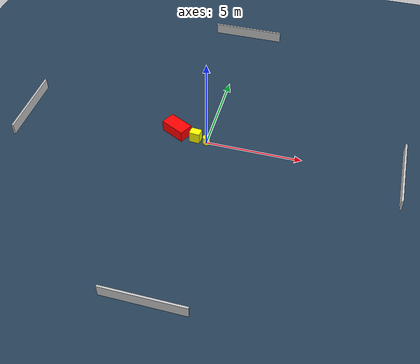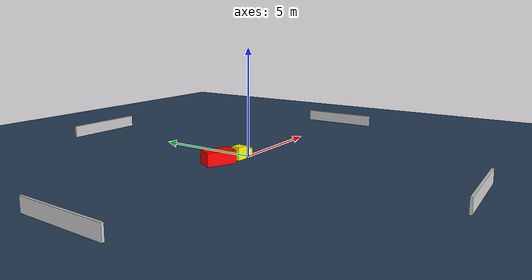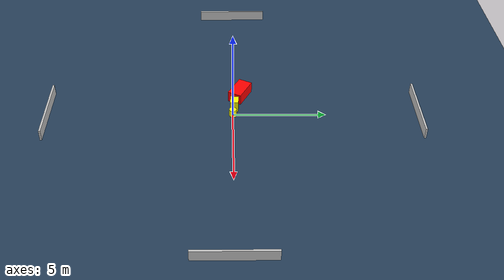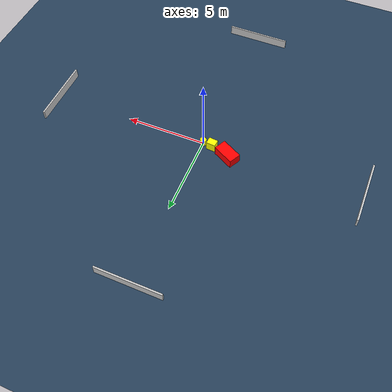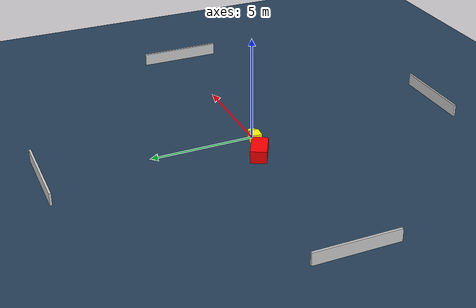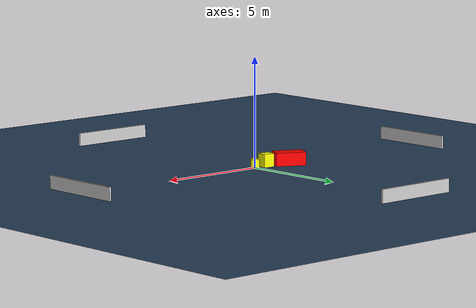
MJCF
<?xml version="1.0" ?>
<mujoco model="generated_environment">
  <option timestep="0.01" integrator="RK4" cone="elliptic"/>
  <default>
    <geom density="1"/>
  </default>
  <asset>
    <texture builtin="gradient" height="3072" name="skybox" rgb1="0.3 0.5 0.7" rgb2="0 0 0" type="skybox" width="512"/>
    <texture builtin="checker" height="300" name="groundplane" rgb1="0.2 0.3 0.4" rgb2="0.1 0.2 0.3" type="2d" width="300"/>
    <material name="groundplane" reflectance="0.2" texrepeat="5 5" texture="groundplane"/>
  </asset>
  <worldbody>
    <light dir="0 0 -1" directional="true" pos="0 0 1.5"/>
    <geom condim="3" friction="0.5 0.005 0.001" material="groundplane" name="floor" pos="0 0 0" size="0 0 0.05" type="plane"/>
    <body name="walls">
      <geom name="wall_1" condim="4" pos="-10.0 0.0 0.3" rgba="0.800000011920929 0.800000011920929 0.800000011920929 1.0" size="0.05 2.0 0.3" type="box"/>
      <geom name="wall_2" condim="4" pos="10.0 0.0 0.3" rgba="0.800000011920929 0.800000011920929 0.800000011920929 1.0" size="0.05 2.0 0.3" type="box"/>
      <geom name="wall_3" condim="4" pos="0.0 -10.0 0.3" rgba="0.800000011920929 0.800000011920929 0.800000011920929 1.0" size="2.0 0.05 0.3" type="box"/>
      <geom name="wall_4" condim="4" pos="0.0 10.0 0.3" rgba="0.800000011920929 0.800000011920929 0.800000011920929 1.0" size="2.0 0.05 0.3" type="box"/>
    </body>
    <body name="robot">
      <joint name="joint_x" type="slide" pos="0 0 0" axis="1 0 0"/>
      <joint name="joint_y" type="slide" pos="0 0 0" axis="0 1 0"/>
      <geom name="robot" type="cylinder" pos="0.0 0.0 0.2" size="0.2 0.2 0.0" mass="5.0" friction="1.0 0.005 0.0001" condim="4" rgba="1.0 1.0 0.0 1.0"/>
    </body>
    <body name="obstacle_1_movable">
      <geom name="obstacle_1_movable" condim="4" pos="-0.6126016259555791 0.08403226019853068 0.3" euler="0 0 265.30102449145954" friction="0.0 0.005 0.001" rgba="1.0 1.0 0.0 1.0" size="0.22204691886730787 0.2795914131138979 0.3" type="box" mass="0.1"/>
      <joint type="free"/>
    </body>
    <body name="obstacle_2_static">
      <geom name="obstacle_2_static" condim="4" pos="-1.7206294395578137 0.40003205582418144 0.3" euler="0 0 332.43012391749704" friction="0.0 0.005 0.001" rgba="1.0 0.0 0.0 1.0" size="0.6837281931172592 0.38196278708859865 0.3" type="box"/>
    </body>
  </worldbody>
  <actuator>
    <motor name="actuator_x" joint="joint_x" gear="1" ctrlrange="-1 1"/>
    <motor name="actuator_y" joint="joint_y" gear="1" ctrlrange="-1 1"/>
  </actuator>
</mujoco>
